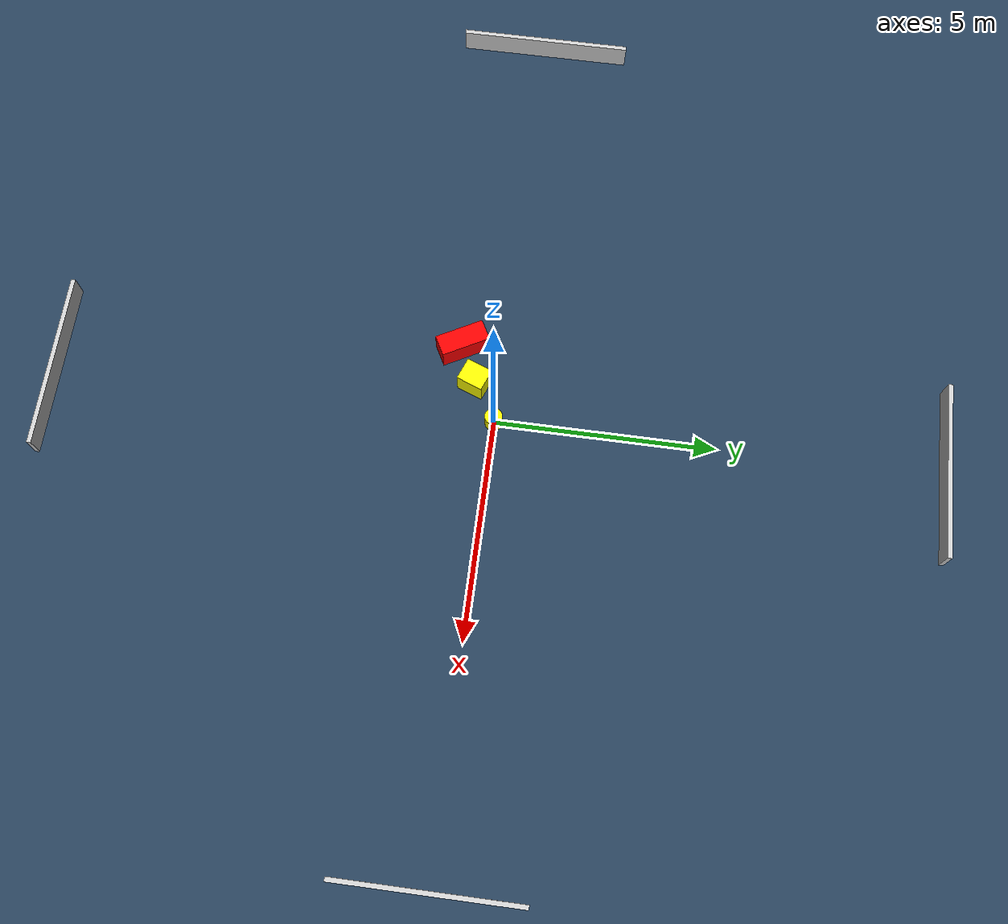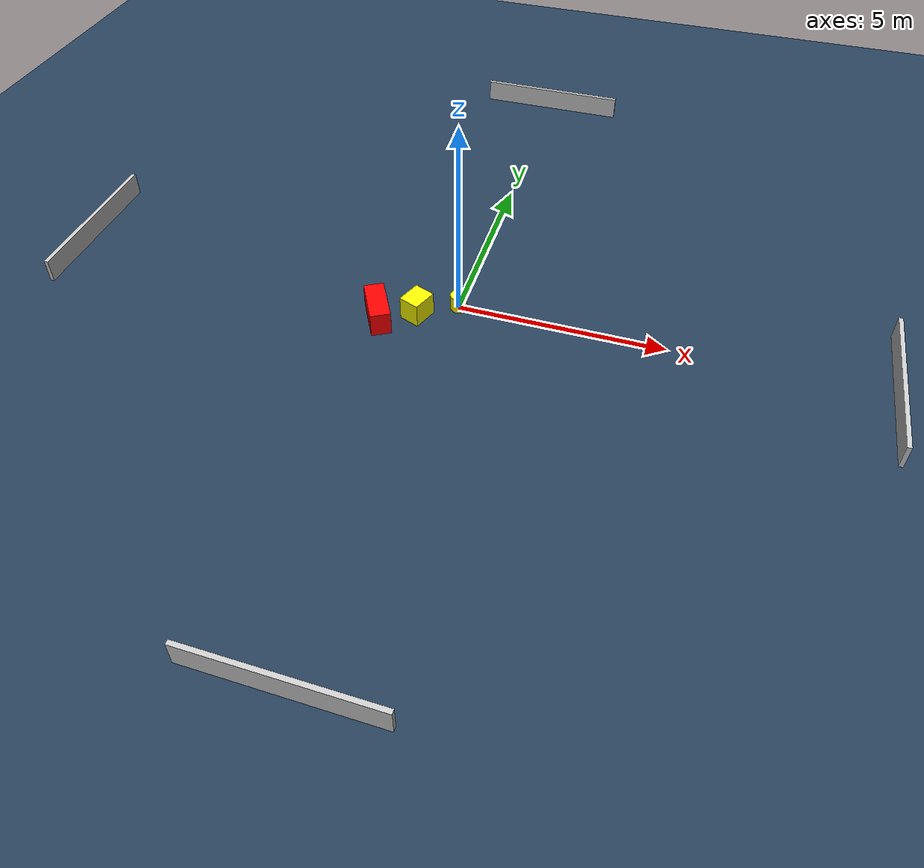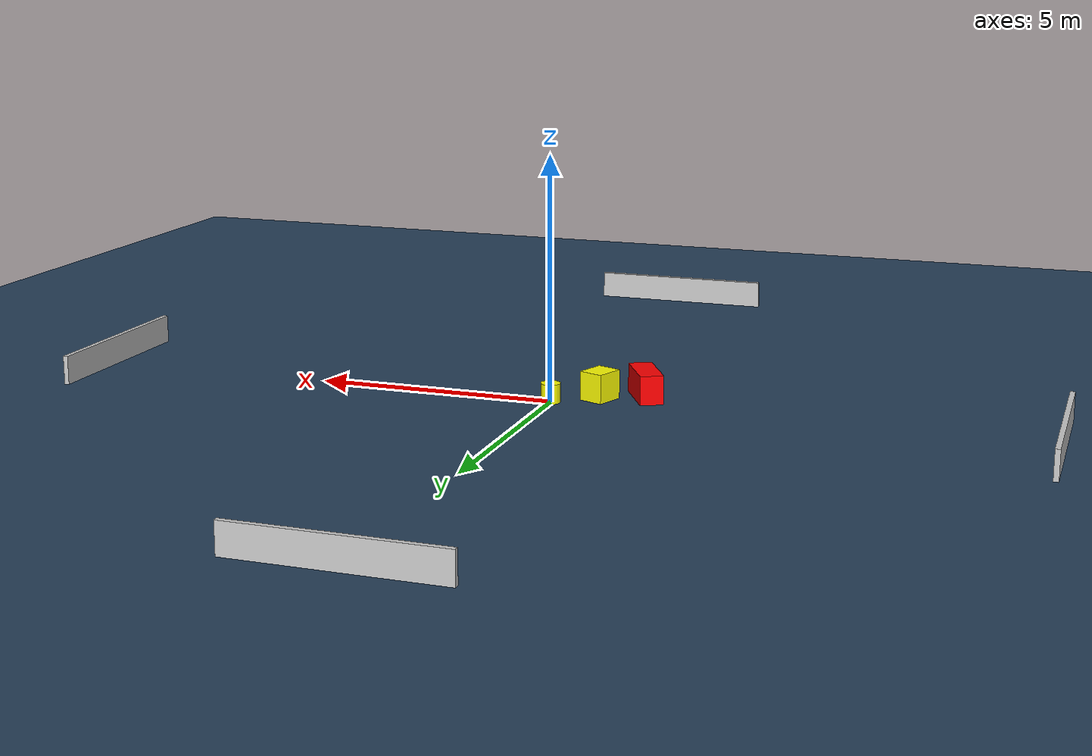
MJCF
<?xml version="1.0" ?>
<mujoco model="generated_environment">
  <option timestep="0.01" integrator="RK4" cone="elliptic"/>
  <default>
    <geom density="1"/>
  </default>
  <asset>
    <texture builtin="gradient" height="3072" name="skybox" rgb1="0.3 0.5 0.7" rgb2="0 0 0" type="skybox" width="512"/>
    <texture builtin="checker" height="300" name="groundplane" rgb1="0.2 0.3 0.4" rgb2="0.1 0.2 0.3" type="2d" width="300"/>
    <material name="groundplane" reflectance="0.2" texrepeat="5 5" texture="groundplane"/>
  </asset>
  <worldbody>
    <light dir="0 0 -1" directional="true" pos="0 0 1.5"/>
    <geom condim="3" friction="0.5 0.005 0.001" material="groundplane" name="floor" pos="0 0 0" size="0 0 0.05" type="plane"/>
    <body name="walls">
      <geom name="wall_1" condim="4" pos="-10.0 0.0 0.3" rgba="0.800000011920929 0.800000011920929 0.800000011920929 1.0" size="0.05 2.0 0.3" type="box"/>
      <geom name="wall_2" condim="4" pos="10.0 0.0 0.3" rgba="0.800000011920929 0.800000011920929 0.800000011920929 1.0" size="0.05 2.0 0.3" type="box"/>
      <geom name="wall_3" condim="4" pos="0.0 -10.0 0.3" rgba="0.800000011920929 0.800000011920929 0.800000011920929 1.0" size="2.0 0.05 0.3" type="box"/>
      <geom name="wall_4" condim="4" pos="0.0 10.0 0.3" rgba="0.800000011920929 0.800000011920929 0.800000011920929 1.0" size="2.0 0.05 0.3" type="box"/>
    </body>
    <body name="robot">
      <joint name="joint_x" type="slide" pos="0 0 0" axis="1 0 0"/>
      <joint name="joint_y" type="slide" pos="0 0 0" axis="0 1 0"/>
      <geom name="robot" type="cylinder" pos="0.0 0.0 0.2" size="0.2 0.2 0.0" mass="5.0" friction="1.0 0.005 0.0001" condim="4" rgba="1.0 1.0 0.0 1.0"/>
    </body>
    <body name="obstacle_1_movable">
      <geom name="obstacle_1_movable" condim="4" pos="-0.8711523668700473 -0.5415981227965698 0.3" euler="0 0 248.65080509724433" friction="0.0 0.005 0.001" rgba="1.0 1.0 0.0 1.0" size="0.3053680810338876 0.25917412374698856 0.3" type="box" mass="0.1"/>
      <joint type="free"/>
    </body>
    <body name="obstacle_2_static">
      <geom name="obstacle_2_static" condim="4" pos="-1.723027990097387 -0.9307630563413463 0.3" euler="0 0 118.63583889144546" friction="0.0 0.005 0.001" rgba="1.0 0.0 0.0 1.0" size="0.5635537562846131 0.24184831598769826 0.3" type="box"/>
    </body>
  </worldbody>
  <actuator>
    <motor name="actuator_x" joint="joint_x" gear="1" ctrlrange="-1 1"/>
    <motor name="actuator_y" joint="joint_y" gear="1" ctrlrange="-1 1"/>
  </actuator>
</mujoco>
